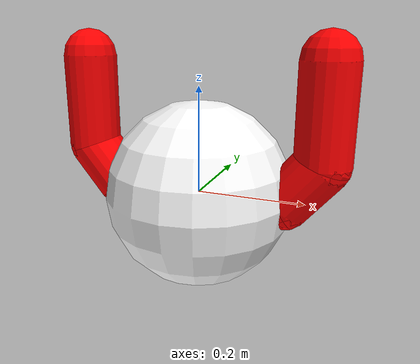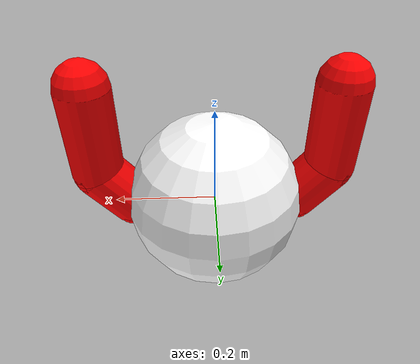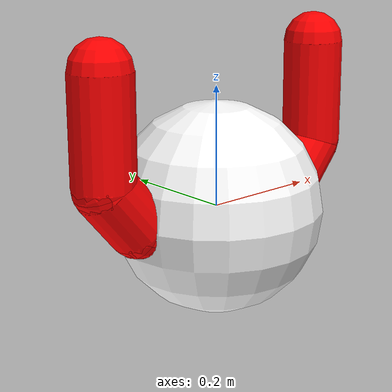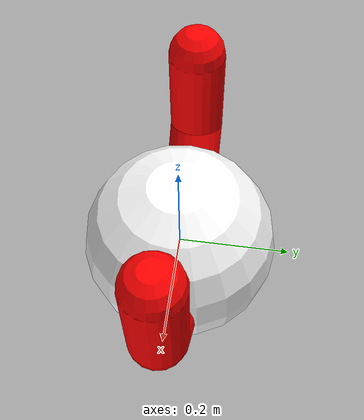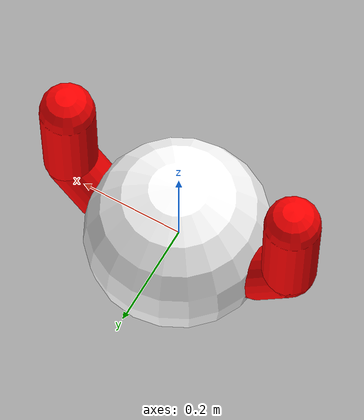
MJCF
<mujoco model="catching">
  <compiler coordinate="local" inertiafromgeom="true"/>
  <default>
    <joint damping="0.05" stiffness="0.1"/>
    <geom contype="1" conaffinity="1" friction="1 0.1 0.1" rgba="0.7 0.7 0 1"/>
  </default>
  <option gravity="1e-5 0 -9.81" integrator="RK4" timestep="0.001"/>
  <size nstack="3000"/>
  <worldbody>
    <camera name="rgb" mode="fixed" pos="0 -4 0.0" euler="90 0 0"/>
      <!-- pos here acts like the origin of the cup -->
    <body name="cup" pos="0 0 0">
<!--      Shape of cup inspired by https://github.com/deepmind/dm_control/blob/master/dm_control/suite/ball_in_cup.xml-->
        <joint name="cup_sliderx" axis="1 0 0" limited="true" margin="0.01" pos="0 0 0" range="-20 20" stiffness="0" type="slide"/>
        <site name="cup_site" pos="0 0 0." size="0.01 0.01"/>
        <geom name="cup_collision_site" type="sphere" pos="0 0 0.08" size="0.01 0.01" rgba="1 1 1 0" mass="0.01" contype="2" conaffinity="2"/>
        <geom name="cup_base" type="capsule" pos="0 0 0" quat="0.707 0 0.707 0" size="0.05 0.1625" rgba="1 0 0 1" mass=".5" contype="2" conaffinity="2"/>
        <geom name="cup_left1" type="capsule" fromto="0.1625 0 0 0.225 0 0.075" size="0.05" rgba="1 0 0 1" mass=".25" contype="2" conaffinity="2"/>
        <geom name="cup_right1" type="capsule" fromto="-0.1625 0 0 -0.225 0 0.075" size="0.05" rgba="1 0 0 1" mass=".25" contype="2" conaffinity="2"/>
        <geom name="cup_left2" type="capsule" fromto="0.225 0 0.075 0.225 0 0.25" size="0.05" rgba="1 0 0 1" mass=".25" contype="2" conaffinity="2"/>
        <geom name="cup_right2" type="capsule" fromto="-0.225 0 0.075 -0.225 0 0.25" size="0.05" rgba="1 0 0 1" mass=".25" contype="2" conaffinity="2"/>
    </body>
    <body name="ball" pos="0 0 0">
      <!--      free joints don't have a position and their params (pos, vel) are the params of the associated geom -->
        <joint name="dummy" type="free"/>
        <geom name="gball" type="sphere" size="0.175 0.175" mass="1.0" rgba="1 1 1 1" contype="3" conaffinity="3"/>
        <site name="ball_site" pos="0 0 0." size="0.01 0.01"/>
    </body>
  </worldbody>
  <actuator>
    <motor joint="cup_sliderx" name="cup_actuatorx" ctrllimited="true" ctrlrange="-1 1" gear="40"/>
  </actuator>
</mujoco>
